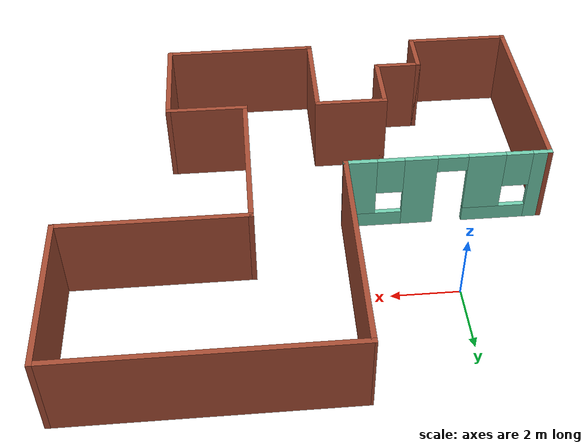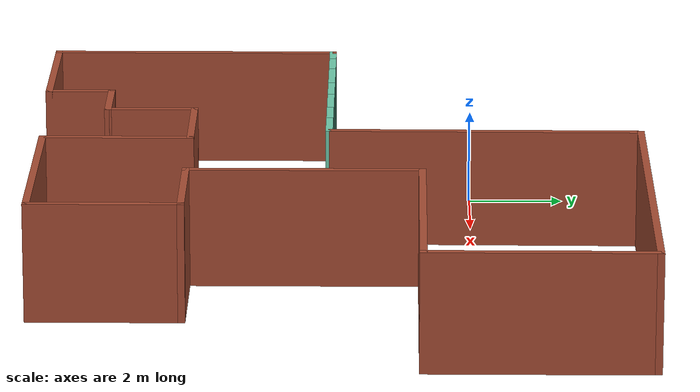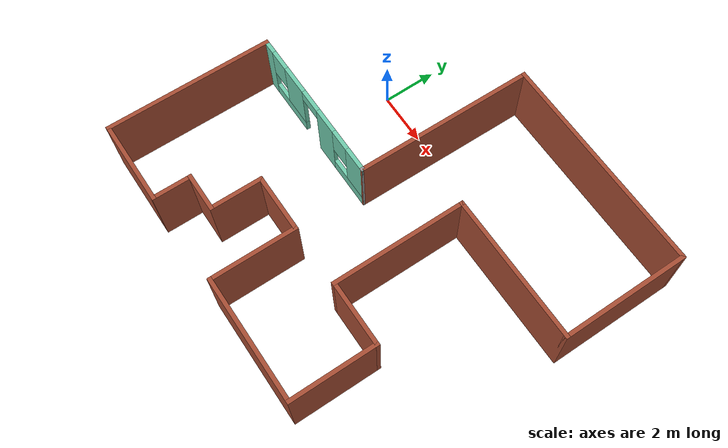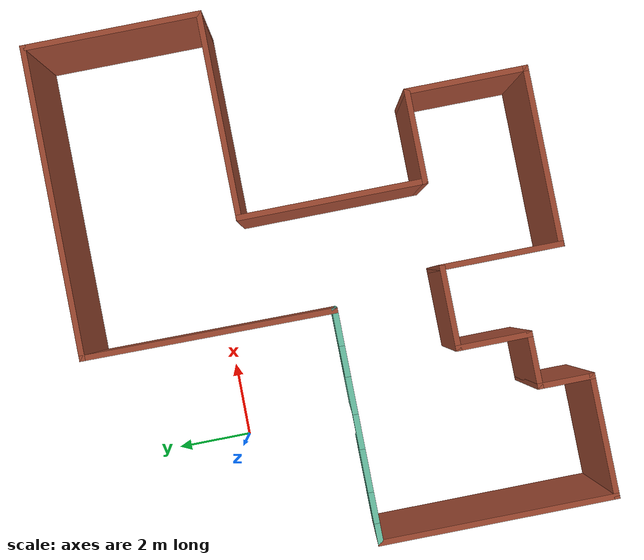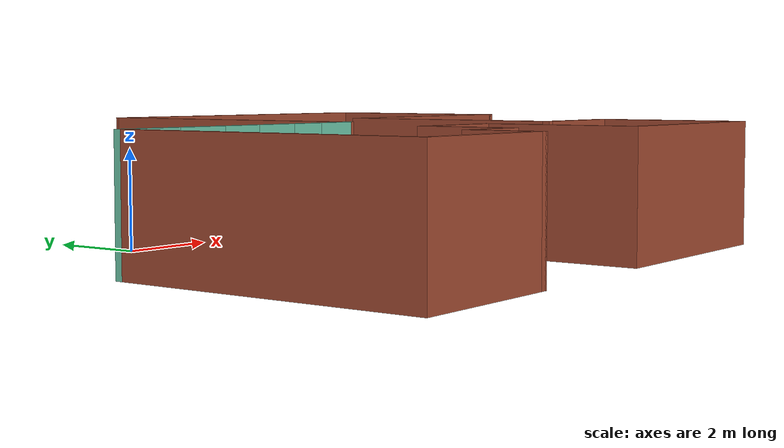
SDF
<?xml version='1.0'?>
<sdf version='1.7'>
  <model name='Home'>
    <pose>4.075 -2.77472 0 0 -0 0</pose>
    <link name='Wall_0'>
      <pose>-4.075 -0.225285 0 0 -0 0</pose>
      <visual name='Wall_0_Visual_0'>
        <pose>-2.7875 0 1.25 0 -0 0</pose>
        <geometry>
          <box>
            <size>0.575 0.15 2.5</size>
          </box>
        </geometry>
        <material>
          <script>
            <uri>file://media/materials/scripts/gazebo.material</uri>
            <name>Gazebo/Grey</name>
          </script>
          <ambient>0.435294 0.796078 0.67451 1</ambient>
        </material>
        <meta>
          <layer>0</layer>
        </meta>
      </visual>
      <collision name='Wall_0_Collision_0'>
        <geometry>
          <box>
            <size>0.575 0.15 2.5</size>
          </box>
        </geometry>
        <pose>-2.7875 0 1.25 0 -0 0</pose>
      </collision>
      <visual name='Wall_0_Visual_1'>
        <pose>0.795 0 1.25 0 -0 0</pose>
        <geometry>
          <box>
            <size>0.97 0.15 2.5</size>
          </box>
        </geometry>
        <material>
          <script>
            <uri>file://media/materials/scripts/gazebo.material</uri>
            <name>Gazebo/Grey</name>
          </script>
          <ambient>0.435294 0.796078 0.67451 1</ambient>
        </material>
        <meta>
          <layer>0</layer>
        </meta>
      </visual>
      <collision name='Wall_0_Collision_1'>
        <geometry>
          <box>
            <size>0.97 0.15 2.5</size>
          </box>
        </geometry>
        <pose>0.795 0 1.25 0 -0 0</pose>
      </collision>
      <visual name='Wall_0_Visual_2'>
        <pose>-1.545 0 0.25 0 -0 0</pose>
        <geometry>
          <box>
            <size>1.91 0.15 0.5</size>
          </box>
        </geometry>
        <material>
          <script>
            <uri>file://media/materials/scripts/gazebo.material</uri>
            <name>Gazebo/Grey</name>
          </script>
          <ambient>0.435294 0.796078 0.67451 1</ambient>
        </material>
        <meta>
          <layer>0</layer>
        </meta>
      </visual>
      <collision name='Wall_0_Collision_2'>
        <geometry>
          <box>
            <size>1.91 0.15 0.5</size>
          </box>
        </geometry>
        <pose>-1.545 0 0.25 0 -0 0</pose>
      </collision>
      <visual name='Wall_0_Visual_3'>
        <pose>2.1775 0 0.25 0 -0 0</pose>
        <geometry>
          <box>
            <size>1.795 0.15 0.5</size>
          </box>
        </geometry>
        <material>
          <script>
            <uri>file://media/materials/scripts/gazebo.material</uri>
            <name>Gazebo/Grey</name>
          </script>
          <ambient>0.435294 0.796078 0.67451 1</ambient>
        </material>
        <meta>
          <layer>0</layer>
        </meta>
      </visual>
      <collision name='Wall_0_Collision_3'>
        <geometry>
          <box>
            <size>1.795 0.15 0.5</size>
          </box>
        </geometry>
        <pose>2.1775 0 0.25 0 -0 0</pose>
      </collision>
      <visual name='Wall_0_Visual_4'>
        <pose>-1.145 0 1.5 0 -0 0</pose>
        <geometry>
          <box>
            <size>1.11 0.15 2</size>
          </box>
        </geometry>
        <material>
          <script>
            <uri>file://media/materials/scripts/gazebo.material</uri>
            <name>Gazebo/Grey</name>
          </script>
          <ambient>0.435294 0.796078 0.67451 1</ambient>
        </material>
        <meta>
          <layer>0</layer>
        </meta>
      </visual>
      <collision name='Wall_0_Collision_4'>
        <geometry>
          <box>
            <size>1.11 0.15 2</size>
          </box>
        </geometry>
        <pose>-1.145 0 1.5 0 -0 0</pose>
      </collision>
      <visual name='Wall_0_Visual_5'>
        <pose>-1.145 0 1.5 0 -0 0</pose>
        <geometry>
          <box>
            <size>1.11 0.15 2</size>
          </box>
        </geometry>
        <material>
          <script>
            <uri>file://media/materials/scripts/gazebo.material</uri>
            <name>Gazebo/Grey</name>
          </script>
          <ambient>0.435294 0.796078 0.67451 1</ambient>
        </material>
        <meta>
          <layer>0</layer>
        </meta>
      </visual>
      <collision name='Wall_0_Collision_5'>
        <geometry>
          <box>
            <size>1.11 0.15 2</size>
          </box>
        </geometry>
        <pose>-1.145 0 1.5 0 -0 0</pose>
      </collision>
      <visual name='Wall_0_Visual_6'>
        <pose>2.5775 0 1.5 0 -0 0</pose>
        <geometry>
          <box>
            <size>0.995 0.15 2</size>
          </box>
        </geometry>
        <material>
          <script>
            <uri>file://media/materials/scripts/gazebo.material</uri>
            <name>Gazebo/Grey</name>
          </script>
          <ambient>0.435294 0.796078 0.67451 1</ambient>
        </material>
        <meta>
          <layer>0</layer>
        </meta>
      </visual>
      <collision name='Wall_0_Collision_6'>
        <geometry>
          <box>
            <size>0.995 0.15 2</size>
          </box>
        </geometry>
        <pose>2.5775 0 1.5 0 -0 0</pose>
      </collision>
      <visual name='Wall_0_Visual_7'>
        <pose>-2.1 0 1.9 0 -0 0</pose>
        <geometry>
          <box>
            <size>0.8 0.15 1.2</size>
          </box>
        </geometry>
        <material>
          <script>
            <uri>file://media/materials/scripts/gazebo.material</uri>
            <name>Gazebo/Grey</name>
          </script>
          <ambient>0.435294 0.796078 0.67451 1</ambient>
        </material>
        <meta>
          <layer>0</layer>
        </meta>
      </visual>
      <collision name='Wall_0_Collision_7'>
        <geometry>
          <box>
            <size>0.8 0.15 1.2</size>
          </box>
        </geometry>
        <pose>-2.1 0 1.9 0 -0 0</pose>
      </collision>
      <visual name='Wall_0_Visual_8'>
        <pose>1.68 0 1.9 0 -0 0</pose>
        <geometry>
          <box>
            <size>0.8 0.15 1.2</size>
          </box>
        </geometry>
        <material>
          <script>
            <uri>file://media/materials/scripts/gazebo.material</uri>
            <name>Gazebo/Grey</name>
          </script>
          <ambient>0.435294 0.796078 0.67451 1</ambient>
        </material>
        <meta>
          <layer>0</layer>
        </meta>
      </visual>
      <collision name='Wall_0_Collision_8'>
        <geometry>
          <box>
            <size>0.8 0.15 1.2</size>
          </box>
        </geometry>
        <pose>1.68 0 1.9 0 -0 0</pose>
      </collision>
      <visual name='Wall_0_Visual_9'>
        <pose>-0.14 0 2.25 0 -0 0</pose>
        <geometry>
          <box>
            <size>0.9 0.15 0.5</size>
          </box>
        </geometry>
        <material>
          <script>
            <uri>file://media/materials/scripts/gazebo.material</uri>
            <name>Gazebo/Grey</name>
          </script>
          <ambient>0.435294 0.796078 0.67451 1</ambient>
        </material>
        <meta>
          <layer>0</layer>
        </meta>
      </visual>
      <collision name='Wall_0_Collision_9'>
        <geometry>
          <box>
            <size>0.9 0.15 0.5</size>
          </box>
        </geometry>
        <pose>-0.14 0 2.25 0 -0 0</pose>
      </collision>
      <visual name='Wall_0_Visual_10'>
        <pose>-0.14 0 2.25 0 -0 0</pose>
        <geometry>
          <box>
            <size>0.9 0.15 0.5</size>
          </box>
        </geometry>
        <material>
          <script>
            <uri>file://media/materials/scripts/gazebo.material</uri>
            <name>Gazebo/Grey</name>
          </script>
          <ambient>0.435294 0.796078 0.67451 1</ambient>
        </material>
        <meta>
          <layer>0</layer>
        </meta>
      </visual>
      <collision name='Wall_0_Collision_10'>
        <geometry>
          <box>
            <size>0.9 0.15 0.5</size>
          </box>
        </geometry>
        <pose>-0.14 0 2.25 0 -0 0</pose>
      </collision>
    </link>
    <link name='Wall_10'>
      <collision name='Wall_10_Collision'>
        <geometry>
          <box>
            <size>3.25 0.15 2.5</size>
          </box>
        </geometry>
        <pose>0 0 1.25 0 -0 0</pose>
      </collision>
      <visual name='Wall_10_Visual'>
        <pose>0 0 1.25 0 -0 0</pose>
        <geometry>
          <box>
            <size>3.25 0.15 2.5</size>
          </box>
        </geometry>
        <material>
          <script>
            <uri>file://media/materials/scripts/gazebo.material</uri>
            <name>Gazebo/Bricks</name>
          </script>
          <ambient>1 1 1 1</ambient>
        </material>
        <meta>
          <layer>0</layer>
        </meta>
      </visual>
      <pose>4.075 -4.67528 0 0 -0 1.5708</pose>
    </link>
    <link name='Wall_11'>
      <collision name='Wall_11_Collision'>
        <geometry>
          <box>
            <size>2.5 0.15 2.5</size>
          </box>
        </geometry>
        <pose>0 0 1.25 0 -0 0</pose>
      </collision>
      <visual name='Wall_11_Visual'>
        <pose>0 0 1.25 0 -0 0</pose>
        <geometry>
          <box>
            <size>2.5 0.15 2.5</size>
          </box>
        </geometry>
        <material>
          <script>
            <uri>file://media/materials/scripts/gazebo.material</uri>
            <name>Gazebo/Bricks</name>
          </script>
          <ambient>1 1 1 1</ambient>
        </material>
        <meta>
          <layer>0</layer>
        </meta>
      </visual>
      <pose>2.9 -3.12528 0 0 -0 3.14159</pose>
    </link>
    <link name='Wall_12'>
      <collision name='Wall_12_Collision'>
        <geometry>
          <box>
            <size>5 0.15 2.5</size>
          </box>
        </geometry>
        <pose>0 0 1.25 0 -0 0</pose>
      </collision>
      <visual name='Wall_12_Visual'>
        <pose>0 0 1.25 0 -0 0</pose>
        <geometry>
          <box>
            <size>5 0.15 2.5</size>
          </box>
        </geometry>
        <material>
          <script>
            <uri>file://media/materials/scripts/gazebo.material</uri>
            <name>Gazebo/Bricks</name>
          </script>
          <ambient>1 1 1 1</ambient>
        </material>
        <meta>
          <layer>0</layer>
        </meta>
      </visual>
      <pose>1.725 -0.700285 0 0 -0 1.5708</pose>
    </link>
    <link name='Wall_13'>
      <collision name='Wall_13_Collision'>
        <geometry>
          <box>
            <size>5.5 0.15 2.5</size>
          </box>
        </geometry>
        <pose>0 0 1.25 0 -0 0</pose>
      </collision>
      <visual name='Wall_13_Visual'>
        <pose>0 0 1.25 0 -0 0</pose>
        <geometry>
          <box>
            <size>5.5 0.15 2.5</size>
          </box>
        </geometry>
        <material>
          <script>
            <uri>file://media/materials/scripts/gazebo.material</uri>
            <name>Gazebo/Bricks</name>
          </script>
          <ambient>1 1 1 1</ambient>
        </material>
        <meta>
          <layer>0</layer>
        </meta>
      </visual>
      <pose>4.4 1.72471 0 0 -0 0</pose>
    </link>
    <link name='Wall_14'>
      <collision name='Wall_14_Collision'>
        <geometry>
          <box>
            <size>4.75 0.15 2.5</size>
          </box>
        </geometry>
        <pose>0 0 1.25 0 -0 0</pose>
      </collision>
      <visual name='Wall_14_Visual'>
        <pose>0 0 1.25 0 -0 0</pose>
        <geometry>
          <box>
            <size>4.75 0.15 2.5</size>
          </box>
        </geometry>
        <material>
          <script>
            <uri>file://media/materials/scripts/gazebo.material</uri>
            <name>Gazebo/Bricks</name>
          </script>
          <ambient>1 1 1 1</ambient>
        </material>
        <meta>
          <layer>0</layer>
        </meta>
      </visual>
      <pose>7.075 4.02471 0 0 -0 1.5708</pose>
    </link>
    <link name='Wall_15'>
      <collision name='Wall_15_Collision'>
        <geometry>
          <box>
            <size>8.25 0.15 2.5</size>
          </box>
        </geometry>
        <pose>0 0 1.25 0 -0 0</pose>
      </collision>
      <visual name='Wall_15_Visual'>
        <pose>0 0 1.25 0 -0 0</pose>
        <geometry>
          <box>
            <size>8.25 0.15 2.5</size>
          </box>
        </geometry>
        <material>
          <script>
            <uri>file://media/materials/scripts/gazebo.material</uri>
            <name>Gazebo/Bricks</name>
          </script>
          <ambient>1 1 1 1</ambient>
        </material>
        <meta>
          <layer>0</layer>
        </meta>
      </visual>
      <pose>3.025 6.32472 0 0 -0 3.14159</pose>
    </link>
    <link name='Wall_16'>
      <collision name='Wall_16_Collision'>
        <geometry>
          <box>
            <size>6.70019 0.15 2.5</size>
          </box>
        </geometry>
        <pose>0 0 1.25 0 -0 0</pose>
      </collision>
      <visual name='Wall_16_Visual'>
        <pose>0 0 1.25 0 -0 0</pose>
        <geometry>
          <box>
            <size>6.70019 0.15 2.5</size>
          </box>
        </geometry>
        <material>
          <script>
            <uri>file://media/materials/scripts/gazebo.material</uri>
            <name>Gazebo/Bricks</name>
          </script>
          <ambient>1 1 1 1</ambient>
        </material>
        <meta>
          <layer>0</layer>
        </meta>
      </visual>
      <pose>-1.05 3.04971 0 0 -0 -1.57843</pose>
    </link>
    <link name='Wall_17'>
      <collision name='Wall_17_Collision'>
        <geometry>
          <box>
            <size>0.15 0.15 2.5</size>
          </box>
        </geometry>
        <pose>0 0 1.25 0 -0 0</pose>
      </collision>
      <visual name='Wall_17_Visual'>
        <pose>0 0 1.25 0 -0 0</pose>
        <geometry>
          <box>
            <size>0.15 0.15 2.5</size>
          </box>
        </geometry>
        <material>
          <script>
            <uri>file://media/materials/scripts/gazebo.material</uri>
            <name>Gazebo/Grey</name>
          </script>
          <ambient>1 1 1 1</ambient>
        </material>
        <meta>
          <layer>0</layer>
        </meta>
      </visual>
      <pose>-1.075 -0.225285 0 0 -0 0</pose>
    </link>
    <link name='Wall_2'>
      <collision name='Wall_2_Collision'>
        <geometry>
          <box>
            <size>6.25 0.15 2.5</size>
          </box>
        </geometry>
        <pose>0 0 1.25 0 -0 0</pose>
      </collision>
      <visual name='Wall_2_Visual'>
        <pose>0 0 1.25 0 -0 0</pose>
        <geometry>
          <box>
            <size>6.25 0.15 2.5</size>
          </box>
        </geometry>
        <material>
          <script>
            <uri>file://media/materials/scripts/gazebo.material</uri>
            <name>Gazebo/Bricks</name>
          </script>
          <ambient>1 1 1 1</ambient>
        </material>
        <meta>
          <layer>0</layer>
        </meta>
      </visual>
      <pose>-7.075 -3.27528 0 0 -0 -1.5708</pose>
    </link>
    <link name='Wall_3'>
      <collision name='Wall_3_Collision'>
        <geometry>
          <box>
            <size>3.25 0.15 2.5</size>
          </box>
        </geometry>
        <pose>0 0 1.25 0 -0 0</pose>
      </collision>
      <visual name='Wall_3_Visual'>
        <pose>0 0 1.25 0 -0 0</pose>
        <geometry>
          <box>
            <size>3.25 0.15 2.5</size>
          </box>
        </geometry>
        <material>
          <script>
            <uri>file://media/materials/scripts/gazebo.material</uri>
            <name>Gazebo/Bricks</name>
          </script>
          <ambient>1 1 1 1</ambient>
        </material>
        <meta>
          <layer>0</layer>
        </meta>
      </visual>
      <pose>-5.525 -6.32529 0 0 -0 0</pose>
    </link>
    <link name='Wall_4'>
      <collision name='Wall_4_Collision'>
        <geometry>
          <box>
            <size>1.5 0.15 2.5</size>
          </box>
        </geometry>
        <pose>0 0 1.25 0 -0 0</pose>
      </collision>
      <visual name='Wall_4_Visual'>
        <pose>0 0 1.25 0 -0 0</pose>
        <geometry>
          <box>
            <size>1.5 0.15 2.5</size>
          </box>
        </geometry>
        <material>
          <script>
            <uri>file://media/materials/scripts/gazebo.material</uri>
            <name>Gazebo/Bricks</name>
          </script>
          <ambient>1 1 1 1</ambient>
        </material>
        <meta>
          <layer>0</layer>
        </meta>
      </visual>
      <pose>-3.975 -5.65029 0 0 -0 1.5708</pose>
    </link>
    <link name='Wall_5'>
      <collision name='Wall_5_Collision'>
        <geometry>
          <box>
            <size>1.5 0.15 2.5</size>
          </box>
        </geometry>
        <pose>0 0 1.25 0 -0 0</pose>
      </collision>
      <visual name='Wall_5_Visual'>
        <pose>0 0 1.25 0 -0 0</pose>
        <geometry>
          <box>
            <size>1.5 0.15 2.5</size>
          </box>
        </geometry>
        <material>
          <script>
            <uri>file://media/materials/scripts/gazebo.material</uri>
            <name>Gazebo/Bricks</name>
          </script>
          <ambient>1 1 1 1</ambient>
        </material>
        <meta>
          <layer>0</layer>
        </meta>
      </visual>
      <pose>-3.3 -4.97529 0 0 -0 0</pose>
    </link>
    <link name='Wall_6'>
      <collision name='Wall_6_Collision'>
        <geometry>
          <box>
            <size>2 0.15 2.5</size>
          </box>
        </geometry>
        <pose>0 0 1.25 0 -0 0</pose>
      </collision>
      <visual name='Wall_6_Visual'>
        <pose>0 0 1.25 0 -0 0</pose>
        <geometry>
          <box>
            <size>2 0.15 2.5</size>
          </box>
        </geometry>
        <material>
          <script>
            <uri>file://media/materials/scripts/gazebo.material</uri>
            <name>Gazebo/Bricks</name>
          </script>
          <ambient>1 1 1 1</ambient>
        </material>
        <meta>
          <layer>0</layer>
        </meta>
      </visual>
      <pose>-2.625 -4.05028 0 0 -0 1.5708</pose>
    </link>
    <link name='Wall_7'>
      <collision name='Wall_7_Collision'>
        <geometry>
          <box>
            <size>2.25 0.15 2.5</size>
          </box>
        </geometry>
        <pose>0 0 1.25 0 -0 0</pose>
      </collision>
      <visual name='Wall_7_Visual'>
        <pose>0 0 1.25 0 -0 0</pose>
        <geometry>
          <box>
            <size>2.25 0.15 2.5</size>
          </box>
        </geometry>
        <material>
          <script>
            <uri>file://media/materials/scripts/gazebo.material</uri>
            <name>Gazebo/Bricks</name>
          </script>
          <ambient>1 1 1 1</ambient>
        </material>
        <meta>
          <layer>0</layer>
        </meta>
      </visual>
      <pose>-1.575 -3.12528 0 0 -0 0</pose>
    </link>
    <link name='Wall_8'>
      <collision name='Wall_8_Collision'>
        <geometry>
          <box>
            <size>3.25 0.15 2.5</size>
          </box>
        </geometry>
        <pose>0 0 1.25 0 -0 0</pose>
      </collision>
      <visual name='Wall_8_Visual'>
        <pose>0 0 1.25 0 -0 0</pose>
        <geometry>
          <box>
            <size>3.25 0.15 2.5</size>
          </box>
        </geometry>
        <material>
          <script>
            <uri>file://media/materials/scripts/gazebo.material</uri>
            <name>Gazebo/Bricks</name>
          </script>
          <ambient>1 1 1 1</ambient>
        </material>
        <meta>
          <layer>0</layer>
        </meta>
      </visual>
      <pose>-0.525 -4.67528 0 0 -0 -1.5708</pose>
    </link>
    <link name='Wall_9'>
      <collision name='Wall_9_Collision'>
        <geometry>
          <box>
            <size>4.75 0.15 2.5</size>
          </box>
        </geometry>
        <pose>0 0 1.25 0 -0 0</pose>
      </collision>
      <visual name='Wall_9_Visual'>
        <pose>0 0 1.25 0 -0 0</pose>
        <geometry>
          <box>
            <size>4.75 0.15 2.5</size>
          </box>
        </geometry>
        <material>
          <script>
            <uri>file://media/materials/scripts/gazebo.material</uri>
            <name>Gazebo/Bricks</name>
          </script>
          <ambient>1 1 1 1</ambient>
        </material>
        <meta>
          <layer>0</layer>
        </meta>
      </visual>
      <pose>1.775 -6.22529 0 0 -0 0</pose>
    </link>
    <static>1</static>
  </model>
</sdf>
